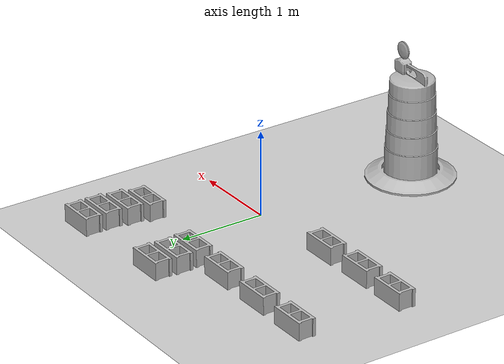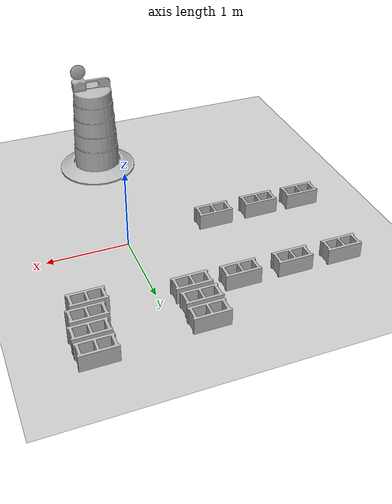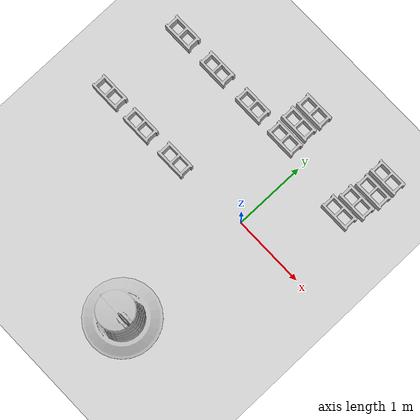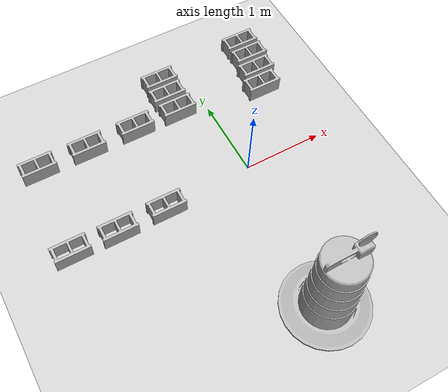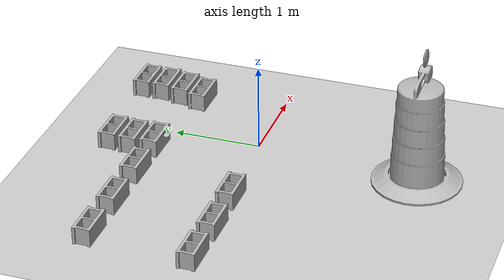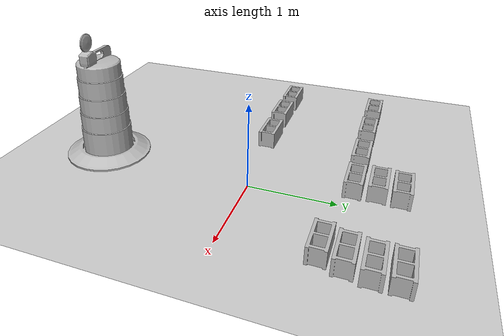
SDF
<sdf version="1.7">
 <world name="default">
  <light name="sun" type="directional">
   <pose>0 0 10 0 -0 0</pose>
   <diffuse>0.8 0.8 0.8 1</diffuse>
   <specular>0.2 0.2 0.2 1</specular>
   <attenuation>
    <range>1000</range>
    <constant>0.9</constant>
    <linear>0.01</linear>
    <quadratic>0.001</quadratic>
   </attenuation>
   <direction>-0.5 0.1 -0.9</direction>
   <spot><inner_angle>0</inner_angle><outer_angle>0</outer_angle><falloff>0</falloff></spot>
  </light>
  <model name="ground_plane">
   <static>1</static>
   <link name="link">
    <collision name="collision">
     <geometry><plane><normal>0 0 1</normal><size>100 100</size></plane></geometry>
     <surface>
      <contact><collide_bitmask>65535</collide_bitmask></contact>
      <friction><ode><mu>100</mu><mu2>50</mu2></ode></friction>
     </surface>
    </collision>
    <visual name="visual">
     <cast_shadows>0</cast_shadows>
     <geometry><plane><normal>0 0 1</normal><size>100 100</size></plane></geometry>
     <material>
      <script><uri>file://media/materials/scripts/gazebo.material</uri><name>Gazebo/Grey</name></script>
     </material>
    </visual>
   </link>
  </model>
  <gravity>0 0 -9.8</gravity>
  <magnetic_field>6e-06 2.3e-05 -4.2e-05</magnetic_field>
  <atmosphere type="adiabatic"/>
  <physics type="ode">
   <max_step_size>0.001</max_step_size>
   <real_time_factor>1</real_time_factor>
   <real_time_update_rate>1000</real_time_update_rate>
  </physics>
  <scene><ambient>0.4 0.4 0.4 1</ambient><background>0.7 0.7 0.7 1</background><shadows>1</shadows></scene>
  <audio><device>default</device></audio>
  <spherical_coordinates>
   <surface_model>EARTH_WGS84</surface_model>
   <latitude_deg>0</latitude_deg>
   <longitude_deg>0</longitude_deg>
   <elevation>0</elevation>
   <heading_deg>0</heading_deg>
  </spherical_coordinates>
  <model name="Construction Barrel">
   <link name="link">
    <inertial>
     <pose>0 0 0.4 0 -0 0</pose>
     <mass>500</mass>
     <inertia><ixx>51.2096</ixx><iyy>51.2096</iyy><izz>25</izz><ixy>0</ixy><ixz>0</ixz><iyz>0</iyz></inertia>
    </inertial>
    <collision name="collision">
     <geometry><mesh><uri>model://construction_barrel/meshes/construction_barrel.dae</uri></mesh></geometry>
    </collision>
    <visual name="visual">
     <geometry><mesh><uri>model://construction_barrel/meshes/construction_barrel.dae</uri></mesh></geometry>
    </visual>
   </link>
   <pose>-0.149332 -1.89026 0 0 0 -4.2e-05</pose>
  </model>
  <model name="cinder_block_0">
   <link name="link">
    <inertial>
     <pose>0 0 0.1016 0 -0 0</pose>
     <mass>5</mass>
     <inertia>
      <ixx>0.028705</ixx>
      <ixy>0</ixy>
      <iyy>0.073708</iyy>
      <ixz>0</ixz>
      <iyz>0</iyz>
      <izz>0.06908</izz>
     </inertia>
    </inertial>
    <visual name="visual">
     <geometry><mesh><uri>model://cinder_block/meshes/cinder_block.dae</uri></mesh></geometry>
    </visual>
    <collision name="left">
     <pose>0 -0.08465 0.1016 0 -0 0</pose>
     <geometry><box><size>0.43495 0.0339 0.2032</size></box></geometry>
     <surface>
      <contact><ode><max_vel>0.1</max_vel><min_depth>0.001</min_depth></ode></contact>
      <friction><ode><mu>1</mu><mu2>1</mu2></ode></friction>
     </surface>
    </collision>
    <collision name="right">
     <pose>0 0.08465 0.1016 0 -0 0</pose>
     <geometry><box><size>0.43495 0.0339 0.2032</size></box></geometry>
     <surface>
      <contact><ode><max_vel>0.1</max_vel><min_depth>0.001</min_depth></ode></contact>
      <friction><ode><mu>1</mu><mu2>1</mu2></ode></friction>
     </surface>
    </collision>
    <collision name="front">
     <pose>0.18625 0 0.1016 0 -0 0</pose>
     <geometry><box><size>0.0339 0.1354 0.203</size></box></geometry>
     <surface>
      <contact><ode><max_vel>0.1</max_vel><min_depth>0.001</min_depth></ode></contact>
      <friction><ode><mu>1</mu><mu2>1</mu2></ode></friction>
     </surface>
    </collision>
    <collision name="middle">
     <pose>0 0 0.1016 0 -0 0</pose>
     <geometry><box><size>0.0339 0.1354 0.203</size></box></geometry>
     <surface>
      <contact><ode><max_vel>0.1</max_vel><min_depth>0.001</min_depth></ode></contact>
      <friction><ode><mu>1</mu><mu2>1</mu2></ode></friction>
     </surface>
    </collision>
    <collision name="back">
     <pose>-0.18625 0 0.1016 0 -0 0</pose>
     <geometry><box><size>0.0339 0.1354 0.203</size></box></geometry>
     <surface>
      <contact><ode><max_vel>0.1</max_vel><min_depth>0.001</min_depth></ode></contact>
      <friction><ode><mu>1</mu><mu2>1</mu2></ode></friction>
     </surface>
    </collision>
   </link>
   <pose>-2.3234 -0.068758 -6e-06 3e-06 2.6e-05 0</pose>
  </model>
  <model name="cinder_block_1">
   <link name="link">
    <inertial>
     <pose>0 0 0.1016 0 -0 0</pose>
     <mass>5</mass>
     <inertia>
      <ixx>0.028705</ixx>
      <ixy>0</ixy>
      <iyy>0.073708</iyy>
      <ixz>0</ixz>
      <iyz>0</iyz>
      <izz>0.06908</izz>
     </inertia>
    </inertial>
    <visual name="visual">
     <geometry><mesh><uri>model://cinder_block/meshes/cinder_block.dae</uri></mesh></geometry>
    </visual>
    <collision name="left">
     <pose>0 -0.08465 0.1016 0 -0 0</pose>
     <geometry><box><size>0.43495 0.0339 0.2032</size></box></geometry>
     <surface>
      <contact><ode><max_vel>0.1</max_vel><min_depth>0.001</min_depth></ode></contact>
      <friction><ode><mu>1</mu><mu2>1</mu2></ode></friction>
     </surface>
    </collision>
    <collision name="right">
     <pose>0 0.08465 0.1016 0 -0 0</pose>
     <geometry><box><size>0.43495 0.0339 0.2032</size></box></geometry>
     <surface>
      <contact><ode><max_vel>0.1</max_vel><min_depth>0.001</min_depth></ode></contact>
      <friction><ode><mu>1</mu><mu2>1</mu2></ode></friction>
     </surface>
    </collision>
    <collision name="front">
     <pose>0.18625 0 0.1016 0 -0 0</pose>
     <geometry><box><size>0.0339 0.1354 0.203</size></box></geometry>
     <surface>
      <contact><ode><max_vel>0.1</max_vel><min_depth>0.001</min_depth></ode></contact>
      <friction><ode><mu>1</mu><mu2>1</mu2></ode></friction>
     </surface>
    </collision>
    <collision name="middle">
     <pose>0 0 0.1016 0 -0 0</pose>
     <geometry><box><size>0.0339 0.1354 0.203</size></box></geometry>
     <surface>
      <contact><ode><max_vel>0.1</max_vel><min_depth>0.001</min_depth></ode></contact>
      <friction><ode><mu>1</mu><mu2>1</mu2></ode></friction>
     </surface>
    </collision>
    <collision name="back">
     <pose>-0.18625 0 0.1016 0 -0 0</pose>
     <geometry><box><size>0.0339 0.1354 0.203</size></box></geometry>
     <surface>
      <contact><ode><max_vel>0.1</max_vel><min_depth>0.001</min_depth></ode></contact>
      <friction><ode><mu>1</mu><mu2>1</mu2></ode></friction>
     </surface>
    </collision>
   </link>
   <pose>-2.24835 1.12075 -6e-06 3e-06 2.6e-05 0</pose>
  </model>
  <model name="cinder_block_2">
   <link name="link">
    <inertial>
     <pose>0 0 0.1016 0 -0 0</pose>
     <mass>5</mass>
     <inertia>
      <ixx>0.028705</ixx>
      <ixy>0</ixy>
      <iyy>0.073708</iyy>
      <ixz>0</ixz>
      <iyz>0</iyz>
      <izz>0.06908</izz>
     </inertia>
    </inertial>
    <visual name="visual">
     <geometry><mesh><uri>model://cinder_block/meshes/cinder_block.dae</uri></mesh></geometry>
    </visual>
    <collision name="left">
     <pose>0 -0.08465 0.1016 0 -0 0</pose>
     <geometry><box><size>0.43495 0.0339 0.2032</size></box></geometry>
     <surface>
      <contact><ode><max_vel>0.1</max_vel><min_depth>0.001</min_depth></ode></contact>
      <friction><ode><mu>1</mu><mu2>1</mu2></ode></friction>
     </surface>
    </collision>
    <collision name="right">
     <pose>0 0.08465 0.1016 0 -0 0</pose>
     <geometry><box><size>0.43495 0.0339 0.2032</size></box></geometry>
     <surface>
      <contact><ode><max_vel>0.1</max_vel><min_depth>0.001</min_depth></ode></contact>
      <friction><ode><mu>1</mu><mu2>1</mu2></ode></friction>
     </surface>
    </collision>
    <collision name="front">
     <pose>0.18625 0 0.1016 0 -0 0</pose>
     <geometry><box><size>0.0339 0.1354 0.203</size></box></geometry>
     <surface>
      <contact><ode><max_vel>0.1</max_vel><min_depth>0.001</min_depth></ode></contact>
      <friction><ode><mu>1</mu><mu2>1</mu2></ode></friction>
     </surface>
    </collision>
    <collision name="middle">
     <pose>0 0 0.1016 0 -0 0</pose>
     <geometry><box><size>0.0339 0.1354 0.203</size></box></geometry>
     <surface>
      <contact><ode><max_vel>0.1</max_vel><min_depth>0.001</min_depth></ode></contact>
      <friction><ode><mu>1</mu><mu2>1</mu2></ode></friction>
     </surface>
    </collision>
    <collision name="back">
     <pose>-0.18625 0 0.1016 0 -0 0</pose>
     <geometry><box><size>0.0339 0.1354 0.203</size></box></geometry>
     <surface>
      <contact><ode><max_vel>0.1</max_vel><min_depth>0.001</min_depth></ode></contact>
      <friction><ode><mu>1</mu><mu2>1</mu2></ode></friction>
     </surface>
    </collision>
   </link>
   <pose>-1.74712 -0.075234 -6e-06 3e-06 2.6e-05 0</pose>
  </model>
  <model name="cinder_block_3">
   <link name="link">
    <inertial>
     <pose>0 0 0.1016 0 -0 0</pose>
     <mass>5</mass>
     <inertia>
      <ixx>0.028705</ixx>
      <ixy>0</ixy>
      <iyy>0.073708</iyy>
      <ixz>0</ixz>
      <iyz>0</iyz>
      <izz>0.06908</izz>
     </inertia>
    </inertial>
    <visual name="visual">
     <geometry><mesh><uri>model://cinder_block/meshes/cinder_block.dae</uri></mesh></geometry>
    </visual>
    <collision name="left">
     <pose>0 -0.08465 0.1016 0 -0 0</pose>
     <geometry><box><size>0.43495 0.0339 0.2032</size></box></geometry>
     <surface>
      <contact><ode><max_vel>0.1</max_vel><min_depth>0.001</min_depth></ode></contact>
      <friction><ode><mu>1</mu><mu2>1</mu2></ode></friction>
     </surface>
    </collision>
    <collision name="right">
     <pose>0 0.08465 0.1016 0 -0 0</pose>
     <geometry><box><size>0.43495 0.0339 0.2032</size></box></geometry>
     <surface>
      <contact><ode><max_vel>0.1</max_vel><min_depth>0.001</min_depth></ode></contact>
      <friction><ode><mu>1</mu><mu2>1</mu2></ode></friction>
     </surface>
    </collision>
    <collision name="front">
     <pose>0.18625 0 0.1016 0 -0 0</pose>
     <geometry><box><size>0.0339 0.1354 0.203</size></box></geometry>
     <surface>
      <contact><ode><max_vel>0.1</max_vel><min_depth>0.001</min_depth></ode></contact>
      <friction><ode><mu>1</mu><mu2>1</mu2></ode></friction>
     </surface>
    </collision>
    <collision name="middle">
     <pose>0 0 0.1016 0 -0 0</pose>
     <geometry><box><size>0.0339 0.1354 0.203</size></box></geometry>
     <surface>
      <contact><ode><max_vel>0.1</max_vel><min_depth>0.001</min_depth></ode></contact>
      <friction><ode><mu>1</mu><mu2>1</mu2></ode></friction>
     </surface>
    </collision>
    <collision name="back">
     <pose>-0.18625 0 0.1016 0 -0 0</pose>
     <geometry><box><size>0.0339 0.1354 0.203</size></box></geometry>
     <surface>
      <contact><ode><max_vel>0.1</max_vel><min_depth>0.001</min_depth></ode></contact>
      <friction><ode><mu>1</mu><mu2>1</mu2></ode></friction>
     </surface>
    </collision>
   </link>
   <pose>-1.13142 -0.062614 -6e-06 3e-06 2.6e-05 0</pose>
  </model>
  <model name="cinder_block_4">
   <link name="link">
    <inertial>
     <pose>0 0 0.1016 0 -0 0</pose>
     <mass>5</mass>
     <inertia>
      <ixx>0.028705</ixx>
      <ixy>0</ixy>
      <iyy>0.073708</iyy>
      <ixz>0</ixz>
      <iyz>0</iyz>
      <izz>0.06908</izz>
     </inertia>
    </inertial>
    <visual name="visual">
     <geometry><mesh><uri>model://cinder_block/meshes/cinder_block.dae</uri></mesh></geometry>
    </visual>
    <collision name="left">
     <pose>0 -0.08465 0.1016 0 -0 0</pose>
     <geometry><box><size>0.43495 0.0339 0.2032</size></box></geometry>
     <surface>
      <contact><ode><max_vel>0.1</max_vel><min_depth>0.001</min_depth></ode></contact>
      <friction><ode><mu>1</mu><mu2>1</mu2></ode></friction>
     </surface>
    </collision>
    <collision name="right">
     <pose>0 0.08465 0.1016 0 -0 0</pose>
     <geometry><box><size>0.43495 0.0339 0.2032</size></box></geometry>
     <surface>
      <contact><ode><max_vel>0.1</max_vel><min_depth>0.001</min_depth></ode></contact>
      <friction><ode><mu>1</mu><mu2>1</mu2></ode></friction>
     </surface>
    </collision>
    <collision name="front">
     <pose>0.18625 0 0.1016 0 -0 0</pose>
     <geometry><box><size>0.0339 0.1354 0.203</size></box></geometry>
     <surface>
      <contact><ode><max_vel>0.1</max_vel><min_depth>0.001</min_depth></ode></contact>
      <friction><ode><mu>1</mu><mu2>1</mu2></ode></friction>
     </surface>
    </collision>
    <collision name="middle">
     <pose>0 0 0.1016 0 -0 0</pose>
     <geometry><box><size>0.0339 0.1354 0.203</size></box></geometry>
     <surface>
      <contact><ode><max_vel>0.1</max_vel><min_depth>0.001</min_depth></ode></contact>
      <friction><ode><mu>1</mu><mu2>1</mu2></ode></friction>
     </surface>
    </collision>
    <collision name="back">
     <pose>-0.18625 0 0.1016 0 -0 0</pose>
     <geometry><box><size>0.0339 0.1354 0.203</size></box></geometry>
     <surface>
      <contact><ode><max_vel>0.1</max_vel><min_depth>0.001</min_depth></ode></contact>
      <friction><ode><mu>1</mu><mu2>1</mu2></ode></friction>
     </surface>
    </collision>
   </link>
   <pose>-1.61278 1.11757 -6e-06 3e-06 2.6e-05 0</pose>
  </model>
  <model name="cinder_block_5">
   <link name="link">
    <inertial>
     <pose>0 0 0.1016 0 -0 0</pose>
     <mass>5</mass>
     <inertia>
      <ixx>0.028705</ixx>
      <ixy>0</ixy>
      <iyy>0.073708</iyy>
      <ixz>0</ixz>
      <iyz>0</iyz>
      <izz>0.06908</izz>
     </inertia>
    </inertial>
    <visual name="visual">
     <geometry><mesh><uri>model://cinder_block/meshes/cinder_block.dae</uri></mesh></geometry>
    </visual>
    <collision name="left">
     <pose>0 -0.08465 0.1016 0 -0 0</pose>
     <geometry><box><size>0.43495 0.0339 0.2032</size></box></geometry>
     <surface>
      <contact><ode><max_vel>0.1</max_vel><min_depth>0.001</min_depth></ode></contact>
      <friction><ode><mu>1</mu><mu2>1</mu2></ode></friction>
     </surface>
    </collision>
    <collision name="right">
     <pose>0 0.08465 0.1016 0 -0 0</pose>
     <geometry><box><size>0.43495 0.0339 0.2032</size></box></geometry>
     <surface>
      <contact><ode><max_vel>0.1</max_vel><min_depth>0.001</min_depth></ode></contact>
      <friction><ode><mu>1</mu><mu2>1</mu2></ode></friction>
     </surface>
    </collision>
    <collision name="front">
     <pose>0.18625 0 0.1016 0 -0 0</pose>
     <geometry><box><size>0.0339 0.1354 0.203</size></box></geometry>
     <surface>
      <contact><ode><max_vel>0.1</max_vel><min_depth>0.001</min_depth></ode></contact>
      <friction><ode><mu>1</mu><mu2>1</mu2></ode></friction>
     </surface>
    </collision>
    <collision name="middle">
     <pose>0 0 0.1016 0 -0 0</pose>
     <geometry><box><size>0.0339 0.1354 0.203</size></box></geometry>
     <surface>
      <contact><ode><max_vel>0.1</max_vel><min_depth>0.001</min_depth></ode></contact>
      <friction><ode><mu>1</mu><mu2>1</mu2></ode></friction>
     </surface>
    </collision>
    <collision name="back">
     <pose>-0.18625 0 0.1016 0 -0 0</pose>
     <geometry><box><size>0.0339 0.1354 0.203</size></box></geometry>
     <surface>
      <contact><ode><max_vel>0.1</max_vel><min_depth>0.001</min_depth></ode></contact>
      <friction><ode><mu>1</mu><mu2>1</mu2></ode></friction>
     </surface>
    </collision>
   </link>
   <pose>-0.963534 1.11846 -6e-06 3e-06 2.6e-05 0</pose>
  </model>
  <model name="cinder_block_7">
   <link name="link">
    <inertial>
     <pose>0 0 0.1016 0 -0 0</pose>
     <mass>5</mass>
     <inertia>
      <ixx>0.028705</ixx>
      <ixy>0</ixy>
      <iyy>0.073708</iyy>
      <ixz>0</ixz>
      <iyz>0</iyz>
      <izz>0.06908</izz>
     </inertia>
    </inertial>
    <visual name="visual">
     <geometry><mesh><uri>model://cinder_block/meshes/cinder_block.dae</uri></mesh></geometry>
    </visual>
    <collision name="left">
     <pose>0 -0.08465 0.1016 0 -0 0</pose>
     <geometry><box><size>0.43495 0.0339 0.2032</size></box></geometry>
     <surface>
      <contact><ode><max_vel>0.1</max_vel><min_depth>0.001</min_depth></ode></contact>
      <friction><ode><mu>1</mu><mu2>1</mu2></ode></friction>
     </surface>
    </collision>
    <collision name="right">
     <pose>0 0.08465 0.1016 0 -0 0</pose>
     <geometry><box><size>0.43495 0.0339 0.2032</size></box></geometry>
     <surface>
      <contact><ode><max_vel>0.1</max_vel><min_depth>0.001</min_depth></ode></contact>
      <friction><ode><mu>1</mu><mu2>1</mu2></ode></friction>
     </surface>
    </collision>
    <collision name="front">
     <pose>0.18625 0 0.1016 0 -0 0</pose>
     <geometry><box><size>0.0339 0.1354 0.203</size></box></geometry>
     <surface>
      <contact><ode><max_vel>0.1</max_vel><min_depth>0.001</min_depth></ode></contact>
      <friction><ode><mu>1</mu><mu2>1</mu2></ode></friction>
     </surface>
    </collision>
    <collision name="middle">
     <pose>0 0 0.1016 0 -0 0</pose>
     <geometry><box><size>0.0339 0.1354 0.203</size></box></geometry>
     <surface>
      <contact><ode><max_vel>0.1</max_vel><min_depth>0.001</min_depth></ode></contact>
      <friction><ode><mu>1</mu><mu2>1</mu2></ode></friction>
     </surface>
    </collision>
    <collision name="back">
     <pose>-0.18625 0 0.1016 0 -0 0</pose>
     <geometry><box><size>0.0339 0.1354 0.203</size></box></geometry>
     <surface>
      <contact><ode><max_vel>0.1</max_vel><min_depth>0.001</min_depth></ode></contact>
      <friction><ode><mu>1</mu><mu2>1</mu2></ode></friction>
     </surface>
    </collision>
   </link>
   <pose>-0.378322 1.11871 -6e-06 3e-06 2.6e-05 0</pose>
  </model>
  <model name="cinder_block_12">
   <link name="link">
    <inertial>
     <pose>0 0 0.1016 0 -0 0</pose>
     <mass>5</mass>
     <inertia>
      <ixx>0.028705</ixx>
      <ixy>0</ixy>
      <iyy>0.073708</iyy>
      <ixz>0</ixz>
      <iyz>0</iyz>
      <izz>0.06908</izz>
     </inertia>
    </inertial>
    <visual name="visual">
     <geometry><mesh><uri>model://cinder_block/meshes/cinder_block.dae</uri></mesh></geometry>
    </visual>
    <collision name="left">
     <pose>0 -0.08465 0.1016 0 -0 0</pose>
     <geometry><box><size>0.43495 0.0339 0.2032</size></box></geometry>
     <surface>
      <contact><ode><max_vel>0.1</max_vel><min_depth>0.001</min_depth></ode></contact>
      <friction><ode><mu>1</mu><mu2>1</mu2></ode></friction>
     </surface>
    </collision>
    <collision name="right">
     <pose>0 0.08465 0.1016 0 -0 0</pose>
     <geometry><box><size>0.43495 0.0339 0.2032</size></box></geometry>
     <surface>
      <contact><ode><max_vel>0.1</max_vel><min_depth>0.001</min_depth></ode></contact>
      <friction><ode><mu>1</mu><mu2>1</mu2></ode></friction>
     </surface>
    </collision>
    <collision name="front">
     <pose>0.18625 0 0.1016 0 -0 0</pose>
     <geometry><box><size>0.0339 0.1354 0.203</size></box></geometry>
     <surface>
      <contact><ode><max_vel>0.1</max_vel><min_depth>0.001</min_depth></ode></contact>
      <friction><ode><mu>1</mu><mu2>1</mu2></ode></friction>
     </surface>
    </collision>
    <collision name="middle">
     <pose>0 0 0.1016 0 -0 0</pose>
     <geometry><box><size>0.0339 0.1354 0.203</size></box></geometry>
     <surface>
      <contact><ode><max_vel>0.1</max_vel><min_depth>0.001</min_depth></ode></contact>
      <friction><ode><mu>1</mu><mu2>1</mu2></ode></friction>
     </surface>
    </collision>
    <collision name="back">
     <pose>-0.18625 0 0.1016 0 -0 0</pose>
     <geometry><box><size>0.0339 0.1354 0.203</size></box></geometry>
     <surface>
      <contact><ode><max_vel>0.1</max_vel><min_depth>0.001</min_depth></ode></contact>
      <friction><ode><mu>1</mu><mu2>1</mu2></ode></friction>
     </surface>
    </collision>
   </link>
   <pose>-0.393904 1.37253 -6e-06 3e-06 2.6e-05 0</pose>
  </model>
  <model name="cinder_block_13">
   <link name="link">
    <inertial>
     <pose>0 0 0.1016 0 -0 0</pose>
     <mass>5</mass>
     <inertia>
      <ixx>0.028705</ixx>
      <ixy>0</ixy>
      <iyy>0.073708</iyy>
      <ixz>0</ixz>
      <iyz>0</iyz>
      <izz>0.06908</izz>
     </inertia>
    </inertial>
    <visual name="visual">
     <geometry><mesh><uri>model://cinder_block/meshes/cinder_block.dae</uri></mesh></geometry>
    </visual>
    <collision name="left">
     <pose>0 -0.08465 0.1016 0 -0 0</pose>
     <geometry><box><size>0.43495 0.0339 0.2032</size></box></geometry>
     <surface>
      <contact><ode><max_vel>0.1</max_vel><min_depth>0.001</min_depth></ode></contact>
      <friction><ode><mu>1</mu><mu2>1</mu2></ode></friction>
     </surface>
    </collision>
    <collision name="right">
     <pose>0 0.08465 0.1016 0 -0 0</pose>
     <geometry><box><size>0.43495 0.0339 0.2032</size></box></geometry>
     <surface>
      <contact><ode><max_vel>0.1</max_vel><min_depth>0.001</min_depth></ode></contact>
      <friction><ode><mu>1</mu><mu2>1</mu2></ode></friction>
     </surface>
    </collision>
    <collision name="front">
     <pose>0.18625 0 0.1016 0 -0 0</pose>
     <geometry><box><size>0.0339 0.1354 0.203</size></box></geometry>
     <surface>
      <contact><ode><max_vel>0.1</max_vel><min_depth>0.001</min_depth></ode></contact>
      <friction><ode><mu>1</mu><mu2>1</mu2></ode></friction>
     </surface>
    </collision>
    <collision name="middle">
     <pose>0 0 0.1016 0 -0 0</pose>
     <geometry><box><size>0.0339 0.1354 0.203</size></box></geometry>
     <surface>
      <contact><ode><max_vel>0.1</max_vel><min_depth>0.001</min_depth></ode></contact>
      <friction><ode><mu>1</mu><mu2>1</mu2></ode></friction>
     </surface>
    </collision>
    <collision name="back">
     <pose>-0.18625 0 0.1016 0 -0 0</pose>
     <geometry><box><size>0.0339 0.1354 0.203</size></box></geometry>
     <surface>
      <contact><ode><max_vel>0.1</max_vel><min_depth>0.001</min_depth></ode></contact>
      <friction><ode><mu>1</mu><mu2>1</mu2></ode></friction>
     </surface>
    </collision>
   </link>
   <pose>-0.378932 1.62381 -6e-06 3e-06 2.6e-05 0</pose>
  </model>
  <model name="cinder_block_14">
   <link name="link">
    <inertial>
     <pose>0 0 0.1016 0 -0 0</pose>
     <mass>5</mass>
     <inertia>
      <ixx>0.028705</ixx>
      <ixy>0</ixy>
      <iyy>0.073708</iyy>
      <ixz>0</ixz>
      <iyz>0</iyz>
      <izz>0.06908</izz>
     </inertia>
    </inertial>
    <visual name="visual">
     <geometry><mesh><uri>model://cinder_block/meshes/cinder_block.dae</uri></mesh></geometry>
    </visual>
    <collision name="left">
     <pose>0 -0.08465 0.1016 0 -0 0</pose>
     <geometry><box><size>0.43495 0.0339 0.2032</size></box></geometry>
     <surface>
      <contact><ode><max_vel>0.1</max_vel><min_depth>0.001</min_depth></ode></contact>
      <friction><ode><mu>1</mu><mu2>1</mu2></ode></friction>
     </surface>
    </collision>
    <collision name="right">
     <pose>0 0.08465 0.1016 0 -0 0</pose>
     <geometry><box><size>0.43495 0.0339 0.2032</size></box></geometry>
     <surface>
      <contact><ode><max_vel>0.1</max_vel><min_depth>0.001</min_depth></ode></contact>
      <friction><ode><mu>1</mu><mu2>1</mu2></ode></friction>
     </surface>
    </collision>
    <collision name="front">
     <pose>0.18625 0 0.1016 0 -0 0</pose>
     <geometry><box><size>0.0339 0.1354 0.203</size></box></geometry>
     <surface>
      <contact><ode><max_vel>0.1</max_vel><min_depth>0.001</min_depth></ode></contact>
      <friction><ode><mu>1</mu><mu2>1</mu2></ode></friction>
     </surface>
    </collision>
    <collision name="middle">
     <pose>0 0 0.1016 0 -0 0</pose>
     <geometry><box><size>0.0339 0.1354 0.203</size></box></geometry>
     <surface>
      <contact><ode><max_vel>0.1</max_vel><min_depth>0.001</min_depth></ode></contact>
      <friction><ode><mu>1</mu><mu2>1</mu2></ode></friction>
     </surface>
    </collision>
    <collision name="back">
     <pose>-0.18625 0 0.1016 0 -0 0</pose>
     <geometry><box><size>0.0339 0.1354 0.203</size></box></geometry>
     <surface>
      <contact><ode><max_vel>0.1</max_vel><min_depth>0.001</min_depth></ode></contact>
      <friction><ode><mu>1</mu><mu2>1</mu2></ode></friction>
     </surface>
    </collision>
   </link>
   <pose>0.760464 0.962334 -1.2e-05 1e-06 -1e-06 0</pose>
  </model>
  <model name="cinder_block_15">
   <link name="link">
    <inertial>
     <pose>0 0 0.1016 0 -0 0</pose>
     <mass>5</mass>
     <inertia>
      <ixx>0.028705</ixx>
      <ixy>0</ixy>
      <iyy>0.073708</iyy>
      <ixz>0</ixz>
      <iyz>0</iyz>
      <izz>0.06908</izz>
     </inertia>
    </inertial>
    <visual name="visual">
     <geometry><mesh><uri>model://cinder_block/meshes/cinder_block.dae</uri></mesh></geometry>
    </visual>
    <collision name="left">
     <pose>0 -0.08465 0.1016 0 -0 0</pose>
     <geometry><box><size>0.43495 0.0339 0.2032</size></box></geometry>
     <surface>
      <contact><ode><max_vel>0.1</max_vel><min_depth>0.001</min_depth></ode></contact>
      <friction><ode><mu>1</mu><mu2>1</mu2></ode></friction>
     </surface>
    </collision>
    <collision name="right">
     <pose>0 0.08465 0.1016 0 -0 0</pose>
     <geometry><box><size>0.43495 0.0339 0.2032</size></box></geometry>
     <surface>
      <contact><ode><max_vel>0.1</max_vel><min_depth>0.001</min_depth></ode></contact>
      <friction><ode><mu>1</mu><mu2>1</mu2></ode></friction>
     </surface>
    </collision>
    <collision name="front">
     <pose>0.18625 0 0.1016 0 -0 0</pose>
     <geometry><box><size>0.0339 0.1354 0.203</size></box></geometry>
     <surface>
      <contact><ode><max_vel>0.1</max_vel><min_depth>0.001</min_depth></ode></contact>
      <friction><ode><mu>1</mu><mu2>1</mu2></ode></friction>
     </surface>
    </collision>
    <collision name="middle">
     <pose>0 0 0.1016 0 -0 0</pose>
     <geometry><box><size>0.0339 0.1354 0.203</size></box></geometry>
     <surface>
      <contact><ode><max_vel>0.1</max_vel><min_depth>0.001</min_depth></ode></contact>
      <friction><ode><mu>1</mu><mu2>1</mu2></ode></friction>
     </surface>
    </collision>
    <collision name="back">
     <pose>-0.18625 0 0.1016 0 -0 0</pose>
     <geometry><box><size>0.0339 0.1354 0.203</size></box></geometry>
     <surface>
      <contact><ode><max_vel>0.1</max_vel><min_depth>0.001</min_depth></ode></contact>
      <friction><ode><mu>1</mu><mu2>1</mu2></ode></friction>
     </surface>
    </collision>
   </link>
   <pose>0.822838 1.20533 -1.2e-05 1e-06 -1e-06 0</pose>
  </model>
  <model name="cinder_block_16">
   <link name="link">
    <inertial>
     <pose>0 0 0.1016 0 -0 0</pose>
     <mass>5</mass>
     <inertia>
      <ixx>0.028705</ixx>
      <ixy>0</ixy>
      <iyy>0.073708</iyy>
      <ixz>0</ixz>
      <iyz>0</iyz>
      <izz>0.06908</izz>
     </inertia>
    </inertial>
    <visual name="visual">
     <geometry><mesh><uri>model://cinder_block/meshes/cinder_block.dae</uri></mesh></geometry>
    </visual>
    <collision name="left">
     <pose>0 -0.08465 0.1016 0 -0 0</pose>
     <geometry><box><size>0.43495 0.0339 0.2032</size></box></geometry>
     <surface>
      <contact><ode><max_vel>0.1</max_vel><min_depth>0.001</min_depth></ode></contact>
      <friction><ode><mu>1</mu><mu2>1</mu2></ode></friction>
     </surface>
    </collision>
    <collision name="right">
     <pose>0 0.08465 0.1016 0 -0 0</pose>
     <geometry><box><size>0.43495 0.0339 0.2032</size></box></geometry>
     <surface>
      <contact><ode><max_vel>0.1</max_vel><min_depth>0.001</min_depth></ode></contact>
      <friction><ode><mu>1</mu><mu2>1</mu2></ode></friction>
     </surface>
    </collision>
    <collision name="front">
     <pose>0.18625 0 0.1016 0 -0 0</pose>
     <geometry><box><size>0.0339 0.1354 0.203</size></box></geometry>
     <surface>
      <contact><ode><max_vel>0.1</max_vel><min_depth>0.001</min_depth></ode></contact>
      <friction><ode><mu>1</mu><mu2>1</mu2></ode></friction>
     </surface>
    </collision>
    <collision name="middle">
     <pose>0 0 0.1016 0 -0 0</pose>
     <geometry><box><size>0.0339 0.1354 0.203</size></box></geometry>
     <surface>
      <contact><ode><max_vel>0.1</max_vel><min_depth>0.001</min_depth></ode></contact>
      <friction><ode><mu>1</mu><mu2>1</mu2></ode></friction>
     </surface>
    </collision>
    <collision name="back">
     <pose>-0.18625 0 0.1016 0 -0 0</pose>
     <geometry><box><size>0.0339 0.1354 0.203</size></box></geometry>
     <surface>
      <contact><ode><max_vel>0.1</max_vel><min_depth>0.001</min_depth></ode></contact>
      <friction><ode><mu>1</mu><mu2>1</mu2></ode></friction>
     </surface>
    </collision>
   </link>
   <pose>0.861629 1.45188 -1.2e-05 1e-06 -1e-06 0</pose>
  </model>
  <model name="cinder_block_17">
   <link name="link">
    <inertial>
     <pose>0 0 0.1016 0 -0 0</pose>
     <mass>5</mass>
     <inertia>
      <ixx>0.028705</ixx>
      <ixy>0</ixy>
      <iyy>0.073708</iyy>
      <ixz>0</ixz>
      <iyz>0</iyz>
      <izz>0.06908</izz>
     </inertia>
    </inertial>
    <visual name="visual">
     <geometry><mesh><uri>model://cinder_block/meshes/cinder_block.dae</uri></mesh></geometry>
    </visual>
    <collision name="left">
     <pose>0 -0.08465 0.1016 0 -0 0</pose>
     <geometry><box><size>0.43495 0.0339 0.2032</size></box></geometry>
     <surface>
      <contact><ode><max_vel>0.1</max_vel><min_depth>0.001</min_depth></ode></contact>
      <friction><ode><mu>1</mu><mu2>1</mu2></ode></friction>
     </surface>
    </collision>
    <collision name="right">
     <pose>0 0.08465 0.1016 0 -0 0</pose>
     <geometry><box><size>0.43495 0.0339 0.2032</size></box></geometry>
     <surface>
      <contact><ode><max_vel>0.1</max_vel><min_depth>0.001</min_depth></ode></contact>
      <friction><ode><mu>1</mu><mu2>1</mu2></ode></friction>
     </surface>
    </collision>
    <collision name="front">
     <pose>0.18625 0 0.1016 0 -0 0</pose>
     <geometry><box><size>0.0339 0.1354 0.203</size></box></geometry>
     <surface>
      <contact><ode><max_vel>0.1</max_vel><min_depth>0.001</min_depth></ode></contact>
      <friction><ode><mu>1</mu><mu2>1</mu2></ode></friction>
     </surface>
    </collision>
    <collision name="middle">
     <pose>0 0 0.1016 0 -0 0</pose>
     <geometry><box><size>0.0339 0.1354 0.203</size></box></geometry>
     <surface>
      <contact><ode><max_vel>0.1</max_vel><min_depth>0.001</min_depth></ode></contact>
      <friction><ode><mu>1</mu><mu2>1</mu2></ode></friction>
     </surface>
    </collision>
    <collision name="back">
     <pose>-0.18625 0 0.1016 0 -0 0</pose>
     <geometry><box><size>0.0339 0.1354 0.203</size></box></geometry>
     <surface>
      <contact><ode><max_vel>0.1</max_vel><min_depth>0.001</min_depth></ode></contact>
      <friction><ode><mu>1</mu><mu2>1</mu2></ode></friction>
     </surface>
    </collision>
   </link>
   <pose>0.861809 1.69932 -1.2e-05 1e-06 -1e-06 0</pose>
  </model>
 </world>
</sdf>
